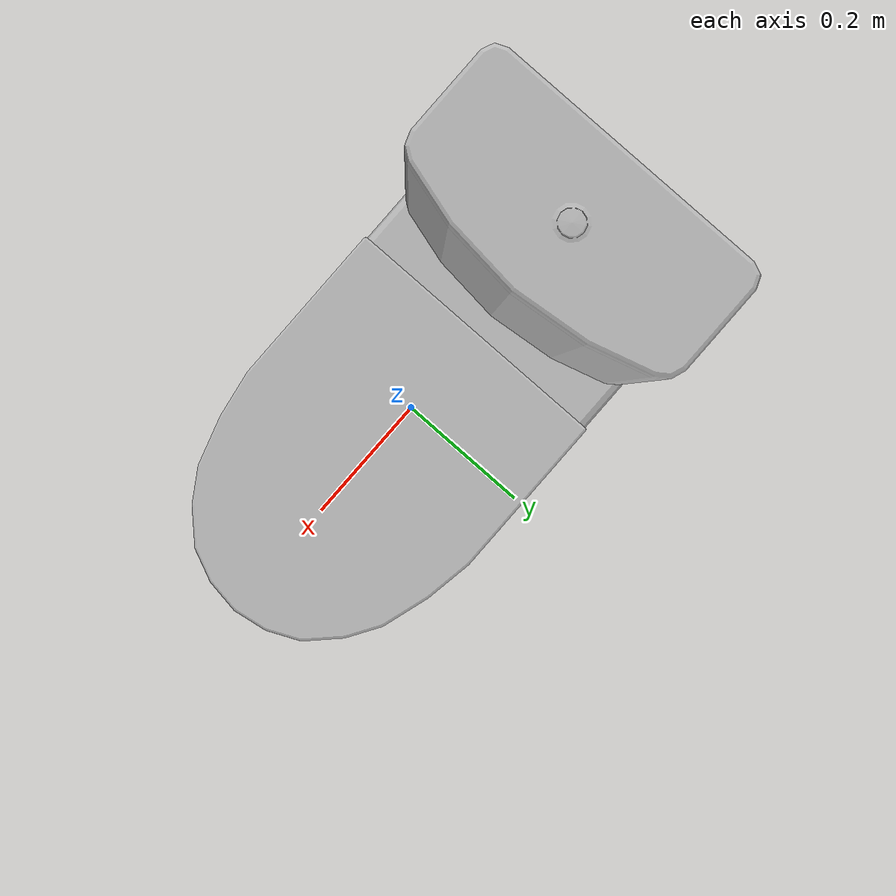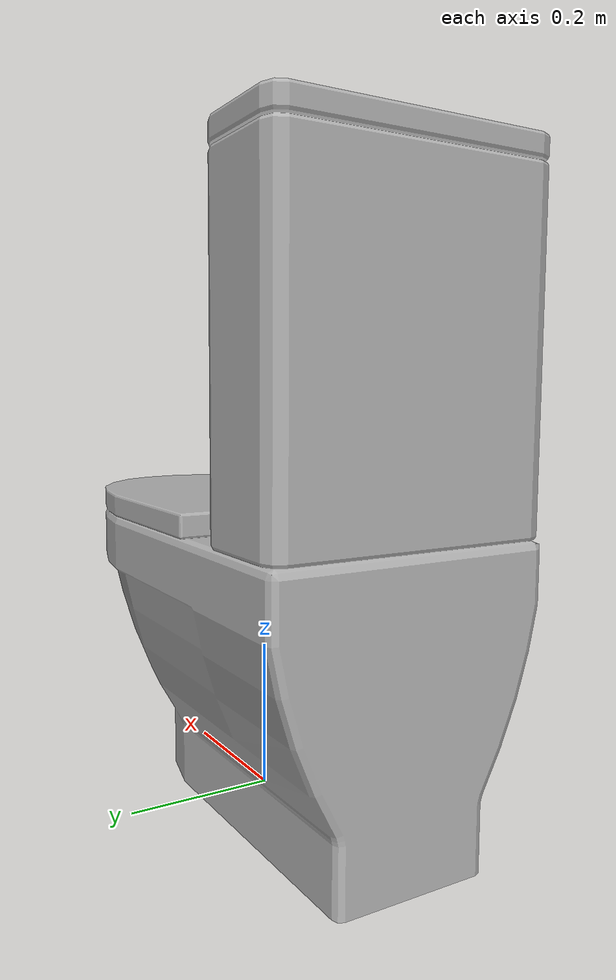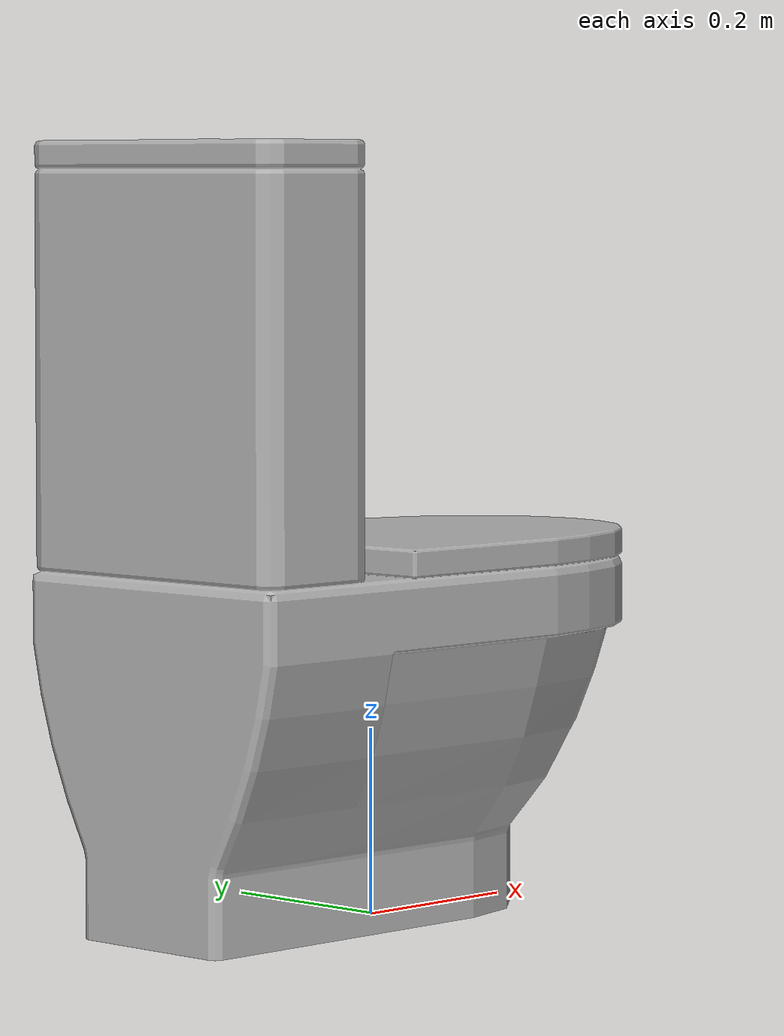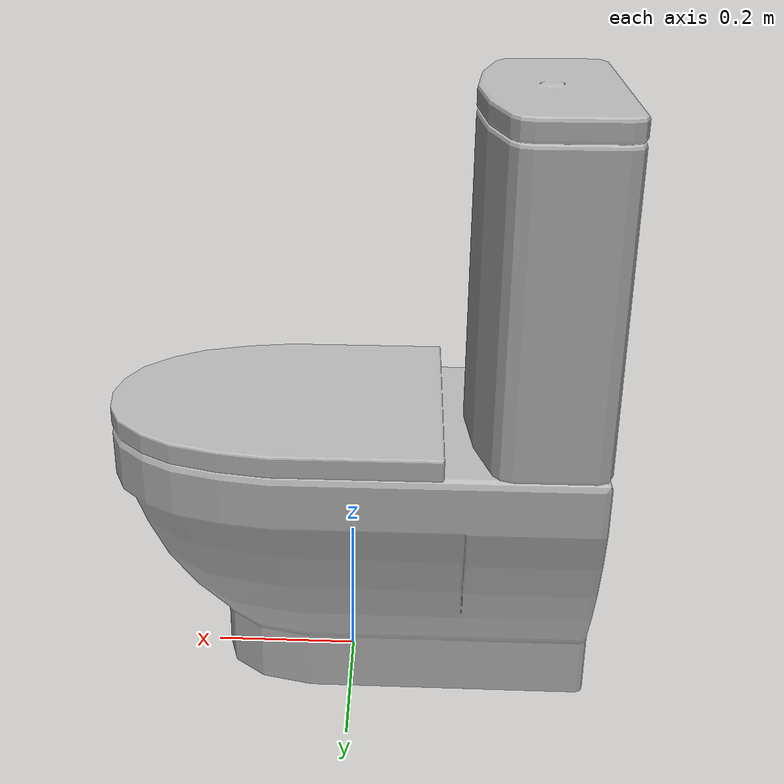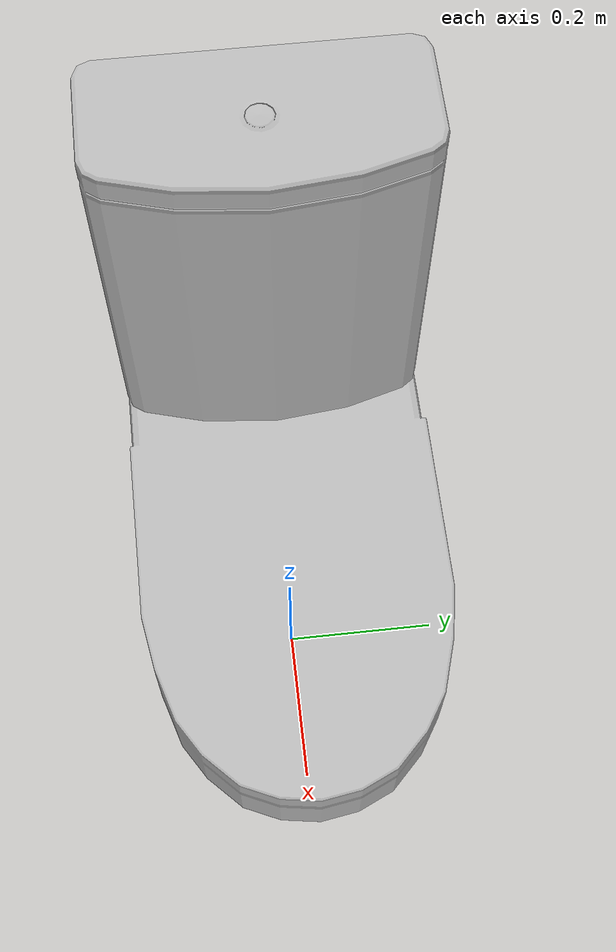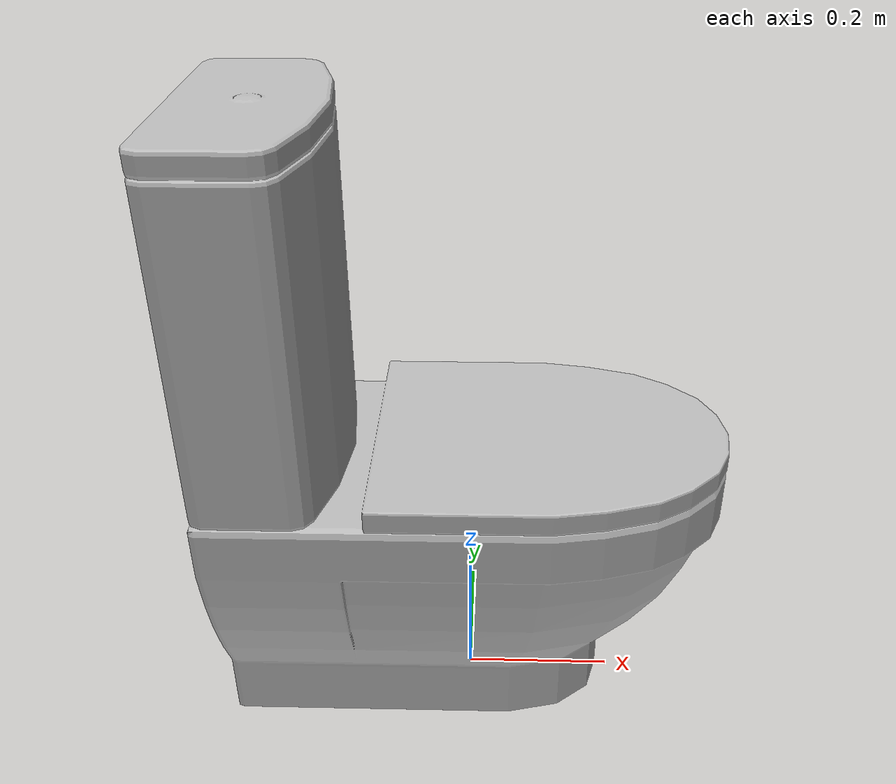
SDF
<?xml version='1.0'?>
<sdf version='1.4'>
  <model name='s__1136'>
    <pose>0 0 0 0 0 0</pose>
    <static>true</static>
    <link name='link'>
      <collision name='collision'>
        <pose>0 0 0 0 0 0</pose>
        <geometry>
          <box>
            <size>0.66 0.36 2</size>
          </box>
        </geometry>
      </collision>
      <visual name='visual'>
        <pose>0 0 0 0 0 0</pose>
        <geometry>
          <mesh><uri>model://s__1136/s__1136.dae</uri></mesh>
        </geometry>
      </visual>
    </link>
  </model>
</sdf>
